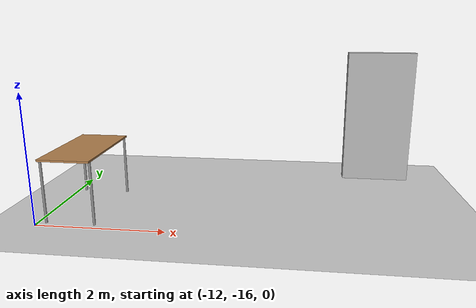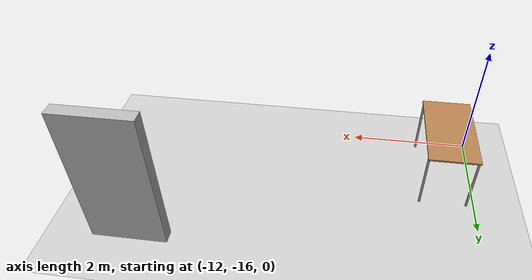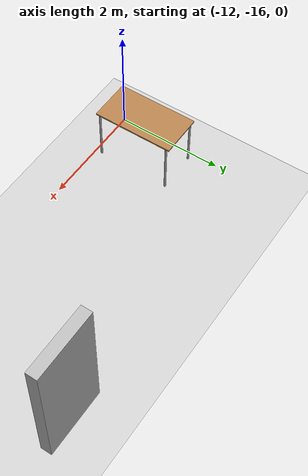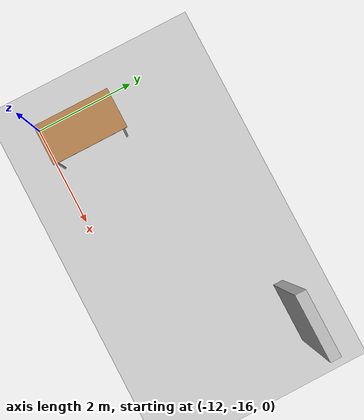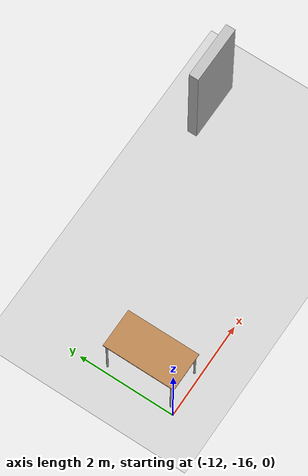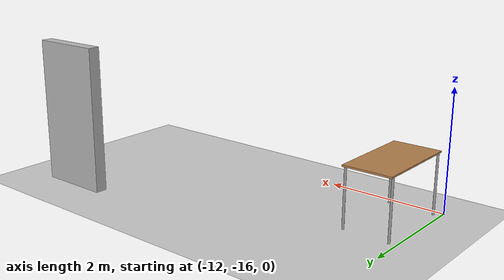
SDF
<sdf version="1.4">
 <world name="drc_practice_task_6">
  <scene><grid>false</grid><ambient>0.2 0.2 0.2 1.0</ambient></scene>
  <physics type="ode">
   <gravity>0 0 -9.81</gravity>
   <ode>
    <solver><type>quick</type><iters>50</iters><sor>1.4</sor></solver>
    <constraints>
     <cfm>0.0</cfm>
     <erp>0.2</erp>
     <contact_max_correcting_vel>100.0</contact_max_correcting_vel>
     <contact_surface_layer>0.0</contact_surface_layer>
    </constraints>
   </ode>
   <real_time_update_rate>1000</real_time_update_rate>
   <max_step_size>0.001</max_step_size>
  </physics>
  <light type="directional" name="sun">
   <pose>0 0 100 0 0 0</pose>
   <diffuse>0.9 0.9 0.9 1</diffuse>
   <specular>0.1 0.1 0.1 1</specular>
   <attenuation>
    <range>1000</range>
    <constant>0.9</constant>
    <linear>0.01</linear>
    <quadratic>0.001</quadratic>
   </attenuation>
   <direction>0.2 0.2 -0.9</direction>
  </light>
  <light type="point" name="light_bulb_2">
   <cast_shadows>false</cast_shadows>
   <pose>-10.6 -19.8 5 0 0 0</pose>
   <diffuse>0.5 0.5 0.5 1</diffuse>
   <specular>0.0 0.0 0.0 1</specular>
   <attenuation>
    <range>80</range>
    <constant>0.9</constant>
    <linear>0.01</linear>
    <quadratic>0.001</quadratic>
   </attenuation>
  </light>
  <include><uri>model://ground_plane</uri></include>
  <include><uri>model://cutout_wall</uri><name>cutout_wall</name><pose>-7.23 -13.25 0 0 0 0</pose></include>
  <include><uri>model://table</uri><static>true</static><pose>-11.5 -15.2 0 0 0 1.5707</pose></include>
  <plugin filename="libVRCPlugin.so" name="vrc_plugin">
   <atlas><model_name>atlas</model_name><pin_link>pelvis</pin_link></atlas>
   <drc_vehicle><model_name>golf_cart</model_name><seat_link>chassis</seat_link></drc_vehicle>
   <drc_fire_hose>
    <fire_hose_model>vrc_firehose_long</fire_hose_model>
    <coupling_link>coupling</coupling_link>
    <standpipe_model>standpipe</standpipe_model>
    <spout_link>standpipe</spout_link>
    <valve_model>valve</valve_model>
    <valve_joint>valve</valve_joint>
    <thread_pitch>-1000</thread_pitch>
    <coupling_relative_pose>0.001784 -4.6e-05 0.023 1.56985 1.55991 -0.000936</coupling_relative_pose>
   </drc_fire_hose>
  </plugin>
 </world>
</sdf>

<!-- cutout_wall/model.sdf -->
<sdf version="1.4">
  <model name="cutout_wall">
    <static>true</static>
    <link name="link">
      <pose>0.6 0 1.2 0 0 0</pose>
      <collision name="collision">
        <geometry>
          <box>
            <size>1.2 0.2 2.4</size>
          </box>
        </geometry>
        <surface>
          <contact>
            <collide_without_contact>true</collide_without_contact>
            <collide_without_contact_bitmask>2</collide_without_contact_bitmask>
          </contact>
        </surface>

      </collision>
      <visual name="visual">
        <cast_shadows>false</cast_shadows>
        <geometry>
          <box>
            <size>1.2 0.2 2.4</size>
          </box>
        </geometry>
        <material>
          <script>
            <uri>model://cutout_wall/materials/scripts</uri>
            <uri>model://cutout_wall/materials/textures</uri>
            <name>drc_practice/cutout_wall</name>
          </script>
        </material>
      </visual>
      <sensor name="mud_contact" type="contact">
        <always_on>true</always_on>
        <update_rate>1000</update_rate>
        <contact>
          <collision>collision</collision>
        </contact>
      </sensor>
    </link>
    <plugin name="gazebo_mud" filename="libMudPlugin.so">
      <contact_sensor_name>link/mud_contact</contact_sensor_name>
      <stiffness>0.0</stiffness>
      <damping>40.0</damping>
      <contact_surface_bitmask>2</contact_surface_bitmask>
      <link_name>drill::link</link_name>
    </plugin>
  </model>
</sdf>

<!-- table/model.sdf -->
<sdf version="1.5">
  <model name="table">
    <static>true</static>
    <link name="link">
      <collision name="surface">
        <pose>0 0 1.0 0 0 0</pose>
        <geometry>
          <box>
            <size>1.5 0.8 0.03</size>
          </box>
        </geometry>
        <surface>
          <friction>
            <ode>
              <mu>0.6</mu>
              <mu2>0.6</mu2>
            </ode>
          </friction>
        </surface>
      </collision>
      <visual name="visual1">
        <pose>0 0 1.0 0 0 0</pose>
        <geometry>
          <box>
            <size>1.5 0.8 0.03</size>
          </box>
        </geometry>
        <material>
          <script>
            <uri>model://media/materials/scripts/gazebo.material</uri>
            <name>Gazebo/Wood</name>
          </script>
        </material>
      </visual>
      <collision name="front_left_leg">
        <pose>0.68 0.38 0.5 0 0 0</pose>
        <geometry>
          <cylinder>
            <radius>0.02</radius>
            <length>1.0</length>
          </cylinder>
        </geometry>
      </collision>
      <visual name="front_left_leg">
        <pose>0.68 0.38 0.5 0 0 0</pose>
        <geometry>
          <cylinder>
            <radius>0.02</radius>
            <length>1.0</length>
          </cylinder>
        </geometry>
        <material>
          <script>
            <uri>model://media/materials/scripts/gazebo.material</uri>
            <name>Gazebo/Grey</name>
          </script>
        </material>
      </visual>
      <collision name="front_right_leg">
        <pose>0.68 -0.38 0.5 0 0 0</pose>
        <geometry>
          <cylinder>
            <radius>0.02</radius>
            <length>1.0</length>
          </cylinder>
        </geometry>
      </collision>
      <visual name="front_right_leg">
        <pose>0.68 -0.38 0.5 0 0 0</pose>
        <geometry>
          <cylinder>
            <radius>0.02</radius>
            <length>1.0</length>
          </cylinder>
        </geometry>
        <material>
          <script>
            <uri>model://media/materials/scripts/gazebo.material</uri>
            <name>Gazebo/Grey</name>
          </script>
        </material>
      </visual>
      <collision name="back_right_leg">
        <pose>-0.68 -0.38 0.5 0 0 0</pose>
        <geometry>
          <cylinder>
            <radius>0.02</radius>
            <length>1.0</length>
          </cylinder>
        </geometry>
      </collision>
      <visual name="back_right_leg">
        <pose>-0.68 -0.38 0.5 0 0 0</pose>
        <geometry>
          <cylinder>
            <radius>0.02</radius>
            <length>1.0</length>
          </cylinder>
        </geometry>
        <material>
          <script>
            <uri>model://media/materials/scripts/gazebo.material</uri>
            <name>Gazebo/Grey</name>
          </script>
        </material>
      </visual>
      <collision name="back_left_leg">
        <pose>-0.68 0.38 0.5 0 0 0</pose>
        <geometry>
          <cylinder>
            <radius>0.02</radius>
            <length>1.0</length>
          </cylinder>
        </geometry>
      </collision>
      <visual name="back_left_leg">
        <pose>-0.68 0.38 0.5 0 0 0</pose>
        <geometry>
          <cylinder>
            <radius>0.02</radius>
            <length>1.0</length>
          </cylinder>
        </geometry>
        <material>
          <script>
            <uri>model://media/materials/scripts/gazebo.material</uri>
            <name>Gazebo/Grey</name>
          </script>
        </material>
      </visual>
    </link>
  </model>
</sdf>
